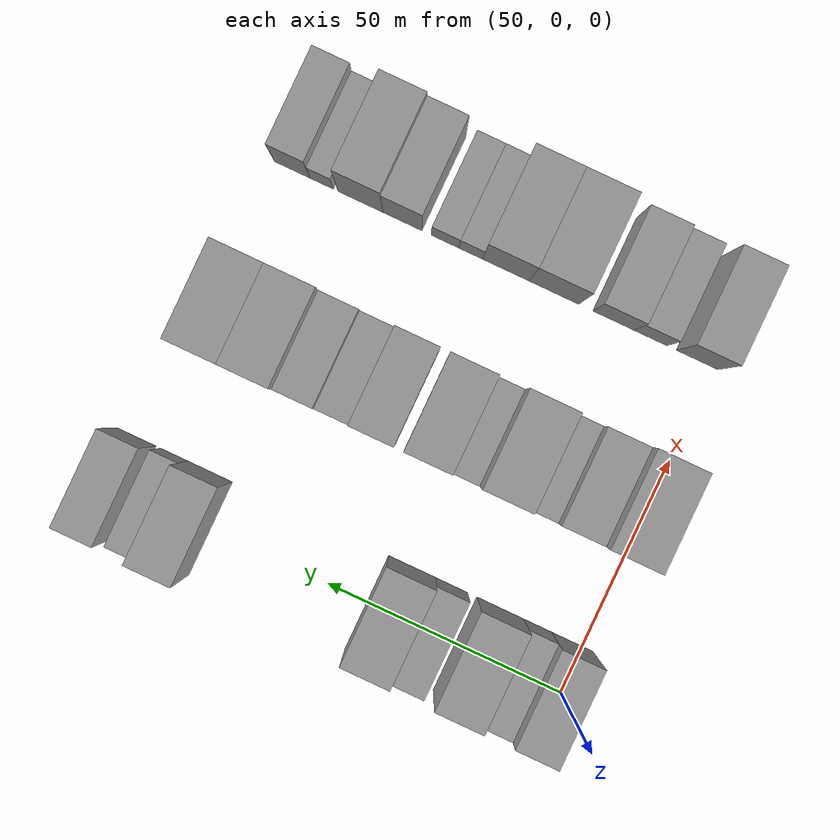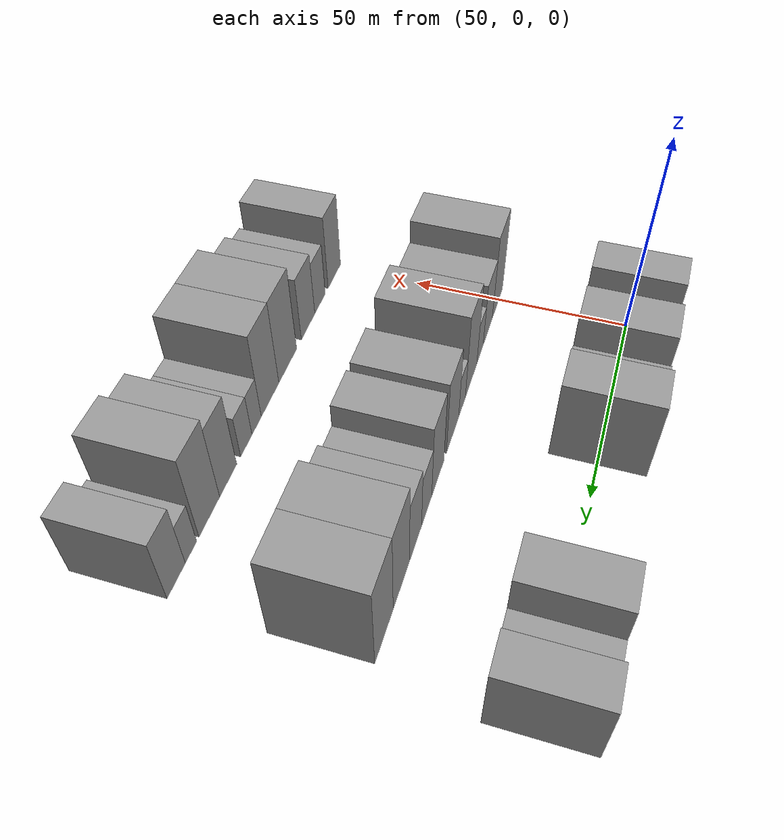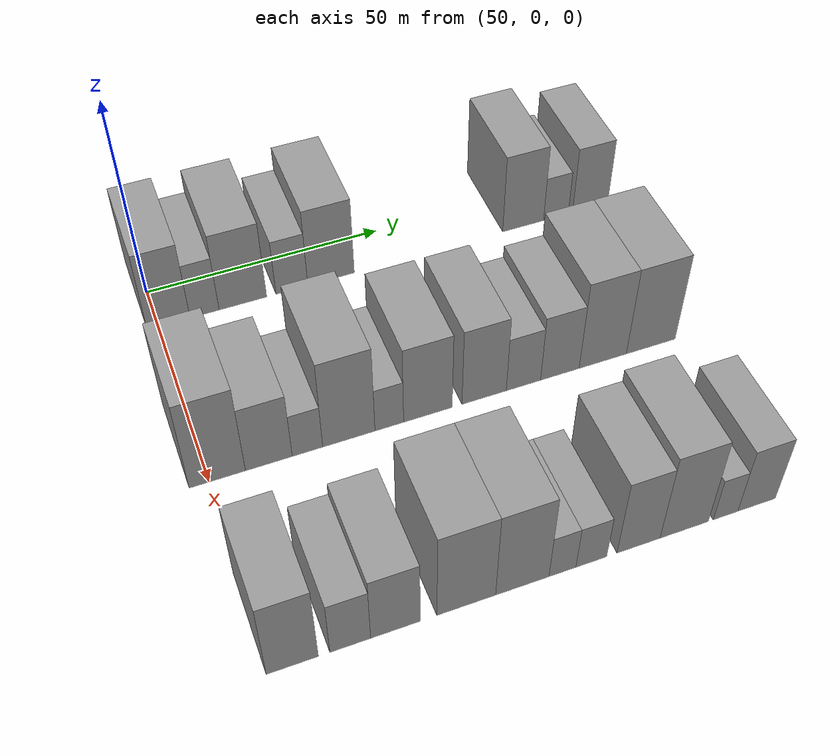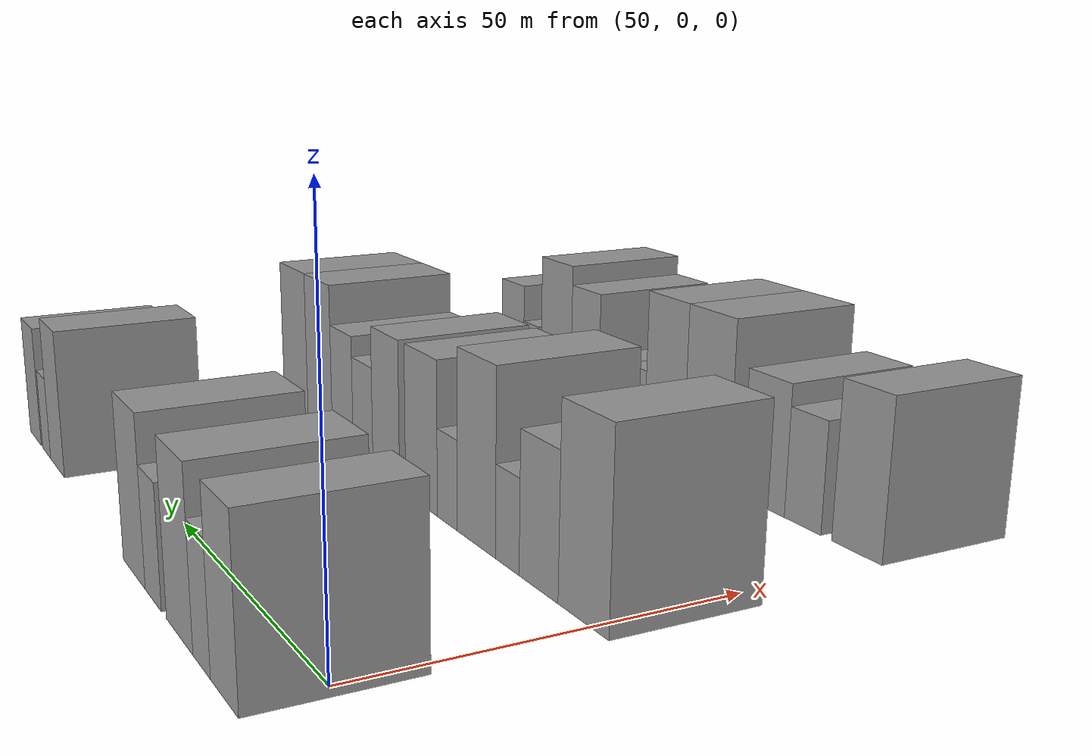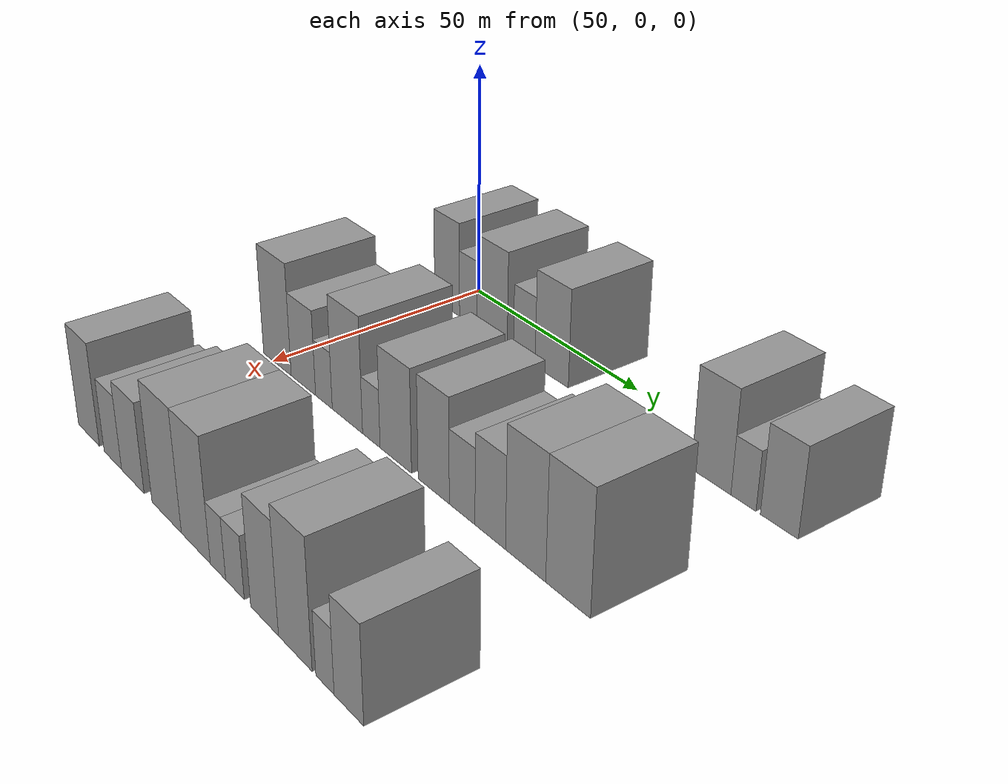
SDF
<sdf version="1.6">
 <world name="default">
  <model name="building_45">
   <static>1</static>
   <pose>50.0000 2.2030 0 0.000000 0.000000 0.000000</pose>
   <link name="link">
    <pose>0 0 10.50 0 0 0</pose>
    <collision name="collision"><geometry><box><size>20.0000 8.8284 21.0000</size></box></geometry></collision>
    <visual name="visual">
     <cast_shadows>0</cast_shadows>
     <geometry><box><size>20.0000 8.8284 21.0000</size></box></geometry>
     <material>
      <script>
       <uri>model://grey_wall/materials/scripts</uri>
       <uri>model://grey_wall/materials/textures</uri>
       <name>vrc/grey_wall</name>
      </script>
     </material>
    </visual>
   </link>
  </model>
  <model name="building_46">
   <static>1</static>
   <pose>50.0000 9.6399 0 0.000000 0.000000 0.000000</pose>
   <link name="link">
    <pose>0 0 7.50 0 0 0</pose>
    <collision name="collision"><geometry><box><size>20.0000 6.0454 15.0000</size></box></geometry></collision>
    <visual name="visual">
     <cast_shadows>0</cast_shadows>
     <geometry><box><size>20.0000 6.0454 15.0000</size></box></geometry>
     <material>
      <script>
       <uri>model://grey_wall/materials/scripts</uri>
       <uri>model://grey_wall/materials/textures</uri>
       <name>vrc/grey_wall</name>
      </script>
     </material>
    </visual>
   </link>
  </model>
  <model name="building_47">
   <static>1</static>
   <pose>50.0000 17.6704 0 0.000000 0.000000 0.000000</pose>
   <link name="link">
    <pose>0 0 10.50 0 0 0</pose>
    <collision name="collision"><geometry><box><size>20.0000 10.0155 21.0000</size></box></geometry></collision>
    <visual name="visual">
     <cast_shadows>0</cast_shadows>
     <geometry><box><size>20.0000 10.0155 21.0000</size></box></geometry>
     <material>
      <script>
       <uri>model://grey_wall/materials/scripts</uri>
       <uri>model://grey_wall/materials/textures</uri>
       <name>vrc/grey_wall</name>
      </script>
     </material>
    </visual>
   </link>
  </model>
  <model name="building_48">
   <static>1</static>
   <pose>50.0000 28.0941 0 0.000000 0.000000 0.000000</pose>
   <link name="link">
    <pose>0 0 7.50 0 0 0</pose>
    <collision name="collision"><geometry><box><size>20.0000 6.8319 15.0000</size></box></geometry></collision>
    <visual name="visual">
     <cast_shadows>0</cast_shadows>
     <geometry><box><size>20.0000 6.8319 15.0000</size></box></geometry>
     <material>
      <script>
       <uri>model://grey_wall/materials/scripts</uri>
       <uri>model://grey_wall/materials/textures</uri>
       <name>vrc/grey_wall</name>
      </script>
     </material>
    </visual>
   </link>
  </model>
  <model name="building_49">
   <static>1</static>
   <pose>50.0000 36.5680 0 0.000000 0.000000 0.000000</pose>
   <link name="link">
    <pose>0 0 10.50 0 0 0</pose>
    <collision name="collision"><geometry><box><size>20.0000 10.1159 21.0000</size></box></geometry></collision>
    <visual name="visual">
     <cast_shadows>0</cast_shadows>
     <geometry><box><size>20.0000 10.1159 21.0000</size></box></geometry>
     <material>
      <script>
       <uri>model://grey_wall/materials/scripts</uri>
       <uri>model://grey_wall/materials/textures</uri>
       <name>vrc/grey_wall</name>
      </script>
     </material>
    </visual>
   </link>
  </model>
  <model name="building_50">
   <static>1</static>
   <pose>50.0000 80.0005 0 0.000000 0.000000 0.000000</pose>
   <link name="link">
    <pose>0 0 10.50 0 0 0</pose>
    <collision name="collision"><geometry><box><size>20.0000 9.5830 21.0000</size></box></geometry></collision>
    <visual name="visual">
     <cast_shadows>0</cast_shadows>
     <geometry><box><size>20.0000 9.5830 21.0000</size></box></geometry>
     <material>
      <script>
       <uri>model://grey_wall/materials/scripts</uri>
       <uri>model://grey_wall/materials/textures</uri>
       <name>vrc/grey_wall</name>
      </script>
     </material>
    </visual>
   </link>
  </model>
  <model name="building_51">
   <static>1</static>
   <pose>50.0000 87.7280 0 0.000000 0.000000 0.000000</pose>
   <link name="link">
    <pose>0 0 6.00 0 0 0</pose>
    <collision name="collision"><geometry><box><size>20.0000 5.8721 12.0000</size></box></geometry></collision>
    <visual name="visual">
     <cast_shadows>0</cast_shadows>
     <geometry><box><size>20.0000 5.8721 12.0000</size></box></geometry>
     <material>
      <script>
       <uri>model://grey_wall/materials/scripts</uri>
       <uri>model://grey_wall/materials/textures</uri>
       <name>vrc/grey_wall</name>
      </script>
     </material>
    </visual>
   </link>
  </model>
  <model name="building_52">
   <static>1</static>
   <pose>50.0000 95.9027 0 0.000000 0.000000 0.000000</pose>
   <link name="link">
    <pose>0 0 9.00 0 0 0</pose>
    <collision name="collision"><geometry><box><size>20.0000 8.4772 18.0000</size></box></geometry></collision>
    <visual name="visual">
     <cast_shadows>0</cast_shadows>
     <geometry><box><size>20.0000 8.4772 18.0000</size></box></geometry>
     <material>
      <script>
       <uri>model://grey_wall/materials/scripts</uri>
       <uri>model://grey_wall/materials/textures</uri>
       <name>vrc/grey_wall</name>
      </script>
     </material>
    </visual>
   </link>
  </model>
  <model name="building_120">
   <static>1</static>
   <pose>90.0000 1.5467 0 0.000000 0.000000 0.000000</pose>
   <link name="link">
    <pose>0 0 12.00 0 0 0</pose>
    <collision name="collision"><geometry><box><size>20.0000 10.5929 24.0000</size></box></geometry></collision>
    <visual name="visual">
     <cast_shadows>0</cast_shadows>
     <geometry><box><size>20.0000 10.5929 24.0000</size></box></geometry>
     <material>
      <script>
       <uri>model://grey_wall/materials/scripts</uri>
       <uri>model://grey_wall/materials/textures</uri>
       <name>vrc/grey_wall</name>
      </script>
     </material>
    </visual>
   </link>
  </model>
  <model name="building_121">
   <static>1</static>
   <pose>90.0000 11.3215 0 0.000000 0.000000 0.000000</pose>
   <link name="link">
    <pose>0 0 9.00 0 0 0</pose>
    <collision name="collision"><geometry><box><size>20.0000 8.9568 18.0000</size></box></geometry></collision>
    <visual name="visual">
     <cast_shadows>0</cast_shadows>
     <geometry><box><size>20.0000 8.9568 18.0000</size></box></geometry>
     <material>
      <script>
       <uri>model://grey_wall/materials/scripts</uri>
       <uri>model://grey_wall/materials/textures</uri>
       <name>vrc/grey_wall</name>
      </script>
     </material>
    </visual>
   </link>
  </model>
  <model name="building_122">
   <static>1</static>
   <pose>90.0000 18.7547 0 0.000000 0.000000 0.000000</pose>
   <link name="link">
    <pose>0 0 6.00 0 0 0</pose>
    <collision name="collision"><geometry><box><size>20.0000 5.9097 12.0000</size></box></geometry></collision>
    <visual name="visual">
     <cast_shadows>0</cast_shadows>
     <geometry><box><size>20.0000 5.9097 12.0000</size></box></geometry>
     <material>
      <script>
       <uri>model://grey_wall/materials/scripts</uri>
       <uri>model://grey_wall/materials/textures</uri>
       <name>vrc/grey_wall</name>
      </script>
     </material>
    </visual>
   </link>
  </model>
  <model name="building_123">
   <static>1</static>
   <pose>90.0000 26.8684 0 0.000000 0.000000 0.000000</pose>
   <link name="link">
    <pose>0 0 12.00 0 0 0</pose>
    <collision name="collision"><geometry><box><size>20.0000 10.3178 24.0000</size></box></geometry></collision>
    <visual name="visual">
     <cast_shadows>0</cast_shadows>
     <geometry><box><size>20.0000 10.3178 24.0000</size></box></geometry>
     <material>
      <script>
       <uri>model://grey_wall/materials/scripts</uri>
       <uri>model://grey_wall/materials/textures</uri>
       <name>vrc/grey_wall</name>
      </script>
     </material>
    </visual>
   </link>
  </model>
  <model name="building_124">
   <static>1</static>
   <pose>90.0000 34.8892 0 0.000000 0.000000 0.000000</pose>
   <link name="link">
    <pose>0 0 6.00 0 0 0</pose>
    <collision name="collision"><geometry><box><size>20.0000 5.7238 12.0000</size></box></geometry></collision>
    <visual name="visual">
     <cast_shadows>0</cast_shadows>
     <geometry><box><size>20.0000 5.7238 12.0000</size></box></geometry>
     <material>
      <script>
       <uri>model://grey_wall/materials/scripts</uri>
       <uri>model://grey_wall/materials/textures</uri>
       <name>vrc/grey_wall</name>
      </script>
     </material>
    </visual>
   </link>
  </model>
  <model name="building_125">
   <static>1</static>
   <pose>90.0000 42.6871 0 0.000000 0.000000 0.000000</pose>
   <link name="link">
    <pose>0 0 10.50 0 0 0</pose>
    <collision name="collision"><geometry><box><size>20.0000 9.8719 21.0000</size></box></geometry></collision>
    <visual name="visual">
     <cast_shadows>0</cast_shadows>
     <geometry><box><size>20.0000 9.8719 21.0000</size></box></geometry>
     <material>
      <script>
       <uri>model://grey_wall/materials/scripts</uri>
       <uri>model://grey_wall/materials/textures</uri>
       <name>vrc/grey_wall</name>
      </script>
     </material>
    </visual>
   </link>
  </model>
  <model name="building_126">
   <static>1</static>
   <pose>90.0000 54.2210 0 0.000000 0.000000 0.000000</pose>
   <link name="link">
    <pose>0 0 10.50 0 0 0</pose>
    <collision name="collision"><geometry><box><size>20.0000 9.1960 21.0000</size></box></geometry></collision>
    <visual name="visual">
     <cast_shadows>0</cast_shadows>
     <geometry><box><size>20.0000 9.1960 21.0000</size></box></geometry>
     <material>
      <script>
       <uri>model://grey_wall/materials/scripts</uri>
       <uri>model://grey_wall/materials/textures</uri>
       <name>vrc/grey_wall</name>
      </script>
     </material>
    </visual>
   </link>
  </model>
  <model name="building_127">
   <static>1</static>
   <pose>90.0000 62.4414 0 0.000000 0.000000 0.000000</pose>
   <link name="link">
    <pose>0 0 7.50 0 0 0</pose>
    <collision name="collision"><geometry><box><size>20.0000 7.2447 15.0000</size></box></geometry></collision>
    <visual name="visual">
     <cast_shadows>0</cast_shadows>
     <geometry><box><size>20.0000 7.2447 15.0000</size></box></geometry>
     <material>
      <script>
       <uri>model://grey_wall/materials/scripts</uri>
       <uri>model://grey_wall/materials/textures</uri>
       <name>vrc/grey_wall</name>
      </script>
     </material>
    </visual>
   </link>
  </model>
  <model name="building_128">
   <static>1</static>
   <pose>90.0000 70.1866 0 0.000000 0.000000 0.000000</pose>
   <link name="link">
    <pose>0 0 9.00 0 0 0</pose>
    <collision name="collision"><geometry><box><size>20.0000 8.2458 18.0000</size></box></geometry></collision>
    <visual name="visual">
     <cast_shadows>0</cast_shadows>
     <geometry><box><size>20.0000 8.2458 18.0000</size></box></geometry>
     <material>
      <script>
       <uri>model://grey_wall/materials/scripts</uri>
       <uri>model://grey_wall/materials/textures</uri>
       <name>vrc/grey_wall</name>
      </script>
     </material>
    </visual>
   </link>
  </model>
  <model name="building_129">
   <static>1</static>
   <pose>90.0000 79.4463 0 0.000000 0.000000 0.000000</pose>
   <link name="link">
    <pose>0 0 12.00 0 0 0</pose>
    <collision name="collision"><geometry><box><size>20.0000 10.2736 24.0000</size></box></geometry></collision>
    <visual name="visual">
     <cast_shadows>0</cast_shadows>
     <geometry><box><size>20.0000 10.2736 24.0000</size></box></geometry>
     <material>
      <script>
       <uri>model://grey_wall/materials/scripts</uri>
       <uri>model://grey_wall/materials/textures</uri>
       <name>vrc/grey_wall</name>
      </script>
     </material>
    </visual>
   </link>
  </model>
  <model name="building_130">
   <static>1</static>
   <pose>90.0000 89.9879 0 0.000000 0.000000 0.000000</pose>
   <link name="link">
    <pose>0 0 12.00 0 0 0</pose>
    <collision name="collision"><geometry><box><size>20.0000 10.8097 24.0000</size></box></geometry></collision>
    <visual name="visual">
     <cast_shadows>0</cast_shadows>
     <geometry><box><size>20.0000 10.8097 24.0000</size></box></geometry>
     <material>
      <script>
       <uri>model://grey_wall/materials/scripts</uri>
       <uri>model://grey_wall/materials/textures</uri>
       <name>vrc/grey_wall</name>
      </script>
     </material>
    </visual>
   </link>
  </model>
  <model name="building_205">
   <static>1</static>
   <pose>130.0000 3.4668 0 0.000000 0.000000 0.000000</pose>
   <link name="link">
    <pose>0 0 10.50 0 0 0</pose>
    <collision name="collision"><geometry><box><size>20.0000 8.9452 21.0000</size></box></geometry></collision>
    <visual name="visual">
     <cast_shadows>0</cast_shadows>
     <geometry><box><size>20.0000 8.9452 21.0000</size></box></geometry>
     <material>
      <script>
       <uri>model://grey_wall/materials/scripts</uri>
       <uri>model://grey_wall/materials/textures</uri>
       <name>vrc/grey_wall</name>
      </script>
     </material>
    </visual>
   </link>
  </model>
  <model name="building_206">
   <static>1</static>
   <pose>130.0000 13.5081 0 0.000000 0.000000 0.000000</pose>
   <link name="link">
    <pose>0 0 7.50 0 0 0</pose>
    <collision name="collision"><geometry><box><size>20.0000 7.1374 15.0000</size></box></geometry></collision>
    <visual name="visual">
     <cast_shadows>0</cast_shadows>
     <geometry><box><size>20.0000 7.1374 15.0000</size></box></geometry>
     <material>
      <script>
       <uri>model://grey_wall/materials/scripts</uri>
       <uri>model://grey_wall/materials/textures</uri>
       <name>vrc/grey_wall</name>
      </script>
     </material>
    </visual>
   </link>
  </model>
  <model name="building_207">
   <static>1</static>
   <pose>130.0000 21.4849 0 0.000000 0.000000 0.000000</pose>
   <link name="link">
    <pose>0 0 9.00 0 0 0</pose>
    <collision name="collision"><geometry><box><size>20.0000 8.8162 18.0000</size></box></geometry></collision>
    <visual name="visual">
     <cast_shadows>0</cast_shadows>
     <geometry><box><size>20.0000 8.8162 18.0000</size></box></geometry>
     <material>
      <script>
       <uri>model://grey_wall/materials/scripts</uri>
       <uri>model://grey_wall/materials/textures</uri>
       <name>vrc/grey_wall</name>
      </script>
     </material>
    </visual>
   </link>
  </model>
  <model name="building_208">
   <static>1</static>
   <pose>130.0000 34.2701 0 0.000000 0.000000 0.000000</pose>
   <link name="link">
    <pose>0 0 12.00 0 0 0</pose>
    <collision name="collision"><geometry><box><size>20.0000 10.7542 24.0000</size></box></geometry></collision>
    <visual name="visual">
     <cast_shadows>0</cast_shadows>
     <geometry><box><size>20.0000 10.7542 24.0000</size></box></geometry>
     <material>
      <script>
       <uri>model://grey_wall/materials/scripts</uri>
       <uri>model://grey_wall/materials/textures</uri>
       <name>vrc/grey_wall</name>
      </script>
     </material>
    </visual>
   </link>
  </model>
  <model name="building_209">
   <static>1</static>
   <pose>130.0000 44.6390 0 0.000000 0.000000 0.000000</pose>
   <link name="link">
    <pose>0 0 12.00 0 0 0</pose>
    <collision name="collision"><geometry><box><size>20.0000 9.9835 24.0000</size></box></geometry></collision>
    <visual name="visual">
     <cast_shadows>0</cast_shadows>
     <geometry><box><size>20.0000 9.9835 24.0000</size></box></geometry>
     <material>
      <script>
       <uri>model://grey_wall/materials/scripts</uri>
       <uri>model://grey_wall/materials/textures</uri>
       <name>vrc/grey_wall</name>
      </script>
     </material>
    </visual>
   </link>
  </model>
  <model name="building_210">
   <static>1</static>
   <pose>130.0000 52.1825 0 0.000000 0.000000 0.000000</pose>
   <link name="link">
    <pose>0 0 6.00 0 0 0</pose>
    <collision name="collision"><geometry><box><size>20.0000 5.1034 12.0000</size></box></geometry></collision>
    <visual name="visual">
     <cast_shadows>0</cast_shadows>
     <geometry><box><size>20.0000 5.1034 12.0000</size></box></geometry>
     <material>
      <script>
       <uri>model://grey_wall/materials/scripts</uri>
       <uri>model://grey_wall/materials/textures</uri>
       <name>vrc/grey_wall</name>
      </script>
     </material>
    </visual>
   </link>
  </model>
  <model name="building_211">
   <static>1</static>
   <pose>130.0000 57.6973 0 0.000000 0.000000 0.000000</pose>
   <link name="link">
    <pose>0 0 6.00 0 0 0</pose>
    <collision name="collision"><geometry><box><size>20.0000 5.9263 12.0000</size></box></geometry></collision>
    <visual name="visual">
     <cast_shadows>0</cast_shadows>
     <geometry><box><size>20.0000 5.9263 12.0000</size></box></geometry>
     <material>
      <script>
       <uri>model://grey_wall/materials/scripts</uri>
       <uri>model://grey_wall/materials/textures</uri>
       <name>vrc/grey_wall</name>
      </script>
     </material>
    </visual>
   </link>
  </model>
  <model name="building_212">
   <static>1</static>
   <pose>130.0000 66.8698 0 0.000000 0.000000 0.000000</pose>
   <link name="link">
    <pose>0 0 10.50 0 0 0</pose>
    <collision name="collision"><geometry><box><size>20.0000 8.4186 21.0000</size></box></geometry></collision>
    <visual name="visual">
     <cast_shadows>0</cast_shadows>
     <geometry><box><size>20.0000 8.4186 21.0000</size></box></geometry>
     <material>
      <script>
       <uri>model://grey_wall/materials/scripts</uri>
       <uri>model://grey_wall/materials/textures</uri>
       <name>vrc/grey_wall</name>
      </script>
     </material>
    </visual>
   </link>
  </model>
  <model name="building_213">
   <static>1</static>
   <pose>130.0000 75.8978 0 0.000000 0.000000 0.000000</pose>
   <link name="link">
    <pose>0 0 12.00 0 0 0</pose>
    <collision name="collision"><geometry><box><size>20.0000 9.6375 24.0000</size></box></geometry></collision>
    <visual name="visual">
     <cast_shadows>0</cast_shadows>
     <geometry><box><size>20.0000 9.6375 24.0000</size></box></geometry>
     <material>
      <script>
       <uri>model://grey_wall/materials/scripts</uri>
       <uri>model://grey_wall/materials/textures</uri>
       <name>vrc/grey_wall</name>
      </script>
     </material>
    </visual>
   </link>
  </model>
  <model name="building_214">
   <static>1</static>
   <pose>130.0000 84.2059 0 0.000000 0.000000 0.000000</pose>
   <link name="link">
    <pose>0 0 6.00 0 0 0</pose>
    <collision name="collision"><geometry><box><size>20.0000 4.9788 12.0000</size></box></geometry></collision>
    <visual name="visual">
     <cast_shadows>0</cast_shadows>
     <geometry><box><size>20.0000 4.9788 12.0000</size></box></geometry>
     <material>
      <script>
       <uri>model://grey_wall/materials/scripts</uri>
       <uri>model://grey_wall/materials/textures</uri>
       <name>vrc/grey_wall</name>
      </script>
     </material>
    </visual>
   </link>
  </model>
  <model name="building_215">
   <static>1</static>
   <pose>130.0000 90.5419 0 0.000000 0.000000 0.000000</pose>
   <link name="link">
    <pose>0 0 9.00 0 0 0</pose>
    <collision name="collision"><geometry><box><size>20.0000 7.6932 18.0000</size></box></geometry></collision>
    <visual name="visual">
     <cast_shadows>0</cast_shadows>
     <geometry><box><size>20.0000 7.6932 18.0000</size></box></geometry>
     <material>
      <script>
       <uri>model://grey_wall/materials/scripts</uri>
       <uri>model://grey_wall/materials/textures</uri>
       <name>vrc/grey_wall</name>
      </script>
     </material>
    </visual>
   </link>
  </model>
 </world>
</sdf>
